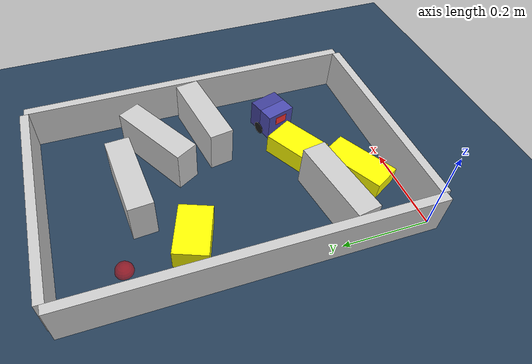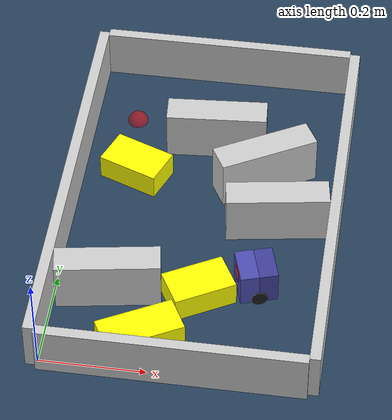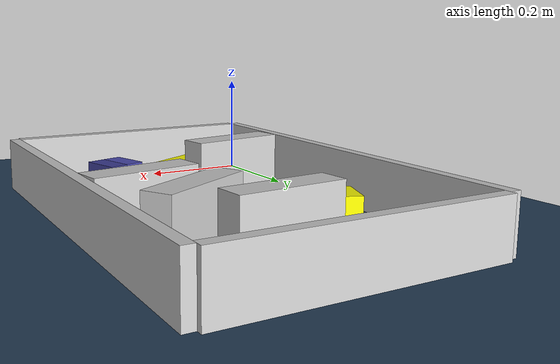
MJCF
<?xml version='1.0' encoding='utf-8'?>
<mujoco model="real_buildable">
  <compiler angle="degree" />
  <option timestep="0.002" integrator="implicitfast" iterations="100" cone="elliptic" />
  <default>
    <geom density="1" />
  </default>
  <asset>
    <texture builtin="gradient" height="3072" rgb1="0.3 0.5 0.7" rgb2="0 0 0" type="skybox" width="512" />
    <texture builtin="checker" height="300" mark="edge" markrgb="0.8 0.8 0.8" name="groundplane" rgb1="0.2 0.3 0.4" rgb2="0.1 0.2 0.3" type="2d" width="300" />
    <material name="groundplane" reflectance="0.2" texrepeat="5 5" texture="groundplane" texuniform="true" />
  </asset>
  <worldbody>
    <light dir="0 0 -1" directional="true" pos="0 0 1.5" />
    <geom name="floor" type="plane" condim="4" friction="0.5 0.005 0.001" material="groundplane" size="0 0 0.05" />
    <body name="walls">
      <geom name="wall_boundary_left" type="box" condim="4" friction="1.0 0.005 0.0001" rgba="0.8 0.8 0.8 1" pos="-0.010000 0.387500 0.050000" euler="0 0 0.000000" size="0.010000 0.397500 0.050000" />
      <geom name="wall_boundary_right" type="box" condim="4" friction="1.0 0.005 0.0001" rgba="0.8 0.8 0.8 1" pos="0.500000 0.387500 0.050000" euler="0 0 0.000000" size="0.010000 0.397500 0.050000" />
      <geom name="wall_boundary_bottom" type="box" condim="4" friction="1.0 0.005 0.0001" rgba="0.8 0.8 0.8 1" pos="0.245000 -0.010000 0.050000" euler="0 0 0.000000" size="0.245000 0.010000 0.050000" />
      <geom name="wall_boundary_top" type="box" condim="4" friction="1.0 0.005 0.0001" rgba="0.8 0.8 0.8 1" pos="0.245000 0.785000 0.050000" euler="0 0 0.000000" size="0.245000 0.010000 0.050000" />
      <geom name="wall_inner_1" type="box" condim="4" friction="1.0 0.005 0.0001" rgba="0.8 0.8 0.8 1" pos="0.100635 0.173598 0.050000" euler="0 0 189.160550" size="0.097500 0.027500 0.050000" />
      <geom name="wall_inner_2" type="box" condim="4" friction="1.0 0.005 0.0001" rgba="0.8 0.8 0.8 1" pos="0.389426 0.383341 0.050000" euler="0 0 188.868566" size="0.097500 0.027500 0.050000" />
      <geom name="wall_inner_3" type="box" condim="4" friction="1.0 0.005 0.0001" rgba="0.8 0.8 0.8 1" pos="0.247000 0.588000 0.050000" euler="0 0 4.200000" size="0.097500 0.027500 0.050000" />
      <geom name="wall_inner_4" type="box" condim="4" friction="1.0 0.005 0.0001" rgba="0.8 0.8 0.8 1" pos="0.351000 0.504000 0.050000" euler="0 0 29.300000" size="0.097500 0.027500 0.050000" />
    </body>
    <body name="car" pos="0.36980117222128189 0.21625060363719634 0.01" quat="0.14707033226564978 0 0 -0.98912603714959979">
      <freejoint name="car_freejoint" />
      <inertial pos="0 0 0.0375" mass="0.35" diaginertia="0.000266 0.000266 0.000286" />
      <geom name="front_chassis_collision" type="box" pos="0.0175 0 0.0375" size="0.0175 0.035 0.0325" rgba="0.3 0.3 0.7 1" />
      <geom name="rear_chassis_collision" type="box" pos="-0.0175 0 0.0375" size="0.0175 0.035 0.0325" rgba="0.25 0.25 0.6 1" />
      <geom name="front_marker" type="box" pos="0.034 0 0.0505" size="0.002 0.015 0.01" rgba="1 0.2 0.2 1" contype="0" conaffinity="0" />
      <body name="rear_support_body" pos="-0.03 0 0.0025">
        <joint name="rear_caster_joint" type="ball" damping="0.0001" />
        <inertial pos="0 0 0" mass="0.025" diaginertia="0.000001 0.000001 0.000001" />
        <geom name="rear_support" type="sphere" pos="0 0 0" size="0.0025" friction="0 0 0" rgba="0.7 0.1 0.1 1" />
      </body>
      <body name="front_support_body" pos="0.03 0 0.0025">
        <joint name="front_caster_joint" type="ball" damping="0.0001" />
        <inertial pos="0 0 0" mass="0.025" diaginertia="0.000001 0.000001 0.000001" />
        <geom name="front_support" type="sphere" pos="0 0 0" size="0.0025" friction="0 0 0" rgba="0.1 0.7 0.1 1" />
      </body>
      <body name="left_wheel" pos="0 0.0375 0.015">
        <inertial pos="0 0 0" mass="0.05" diaginertia="0.000003 0.000006 0.000003" />
        <joint name="left_wheel_joint" type="hinge" axis="0 1 0" damping="0.01" armature="0.0001" />
        <geom name="left_wheel_collision" type="cylinder" size="0.015 0.0005" euler="90 0 0" rgba="0.1 0.1 0.1 1" />
      </body>
      <body name="right_wheel" pos="0 -0.0375 0.015">
        <inertial pos="0 0 0" mass="0.05" diaginertia="0.000003 0.000006 0.000003" />
        <joint name="right_wheel_joint" type="hinge" axis="0 1 0" damping="0.01" armature="0.0001" />
        <geom name="right_wheel_collision" type="cylinder" size="0.015 0.0005" euler="90 0 0" rgba="0.1 0.1 0.1 1" />
      </body>
    </body>
    <body name="obstacle_0_movable">
      <geom name="obstacle_0_movable" condim="4" pos="0.26673095645643363 0.19029755226039921 0.025000000000000001" friction="1 0.005 0.0001" rgba="1 1 0 1" size="0.037500 0.060000 0.025000" type="box" mass="0.1" quat="0.50627694453970518 0 0 0.86237095001370512" />
      <joint type="free" />
    </body>
    <body name="obstacle_1_movable">
      <geom name="obstacle_1_movable" condim="4" pos="0.10199999999999922 0.4899999999999976 0.025000000000000001" friction="1 0.005 0.0001" rgba="1 1 0 1" size="0.037500 0.060000 0.025000" type="box" mass="0.1" quat="0.82560621075455165 0 0 0.56424674103047401" />
      <joint type="free" />
    </body>
    <body name="obstacle_2_movable">
      <geom name="obstacle_2_movable" condim="4" pos="0.1746384893451613 0.077111244668050818 0.02" friction="1 0.005 0.0001" rgba="1 1 0 1" size="0.035000 0.075000 0.020000" type="box" mass="0.1" quat="0.5121830399141486 0 0 0.85887632033040806" />
      <joint type="free" />
    </body>
    <site name="goal" type="sphere" pos="0.080000 0.640000 0.0" size="0.02" rgba="1 0 0 0.5" />
  </worldbody>
  <actuator>
    <velocity name="left_wheel_drive" joint="left_wheel_joint" ctrlrange="-25 25" kv="0.75" forcerange="-0.5 0.5" />
    <velocity name="right_wheel_drive" joint="right_wheel_joint" ctrlrange="-25 25" kv="0.75" forcerange="-0.5 0.5" />
  </actuator>
</mujoco>
